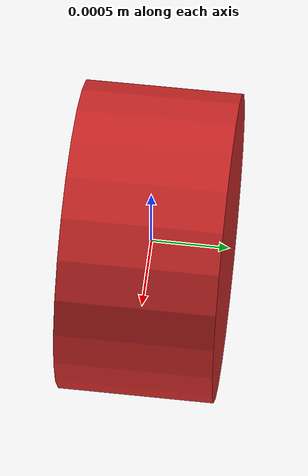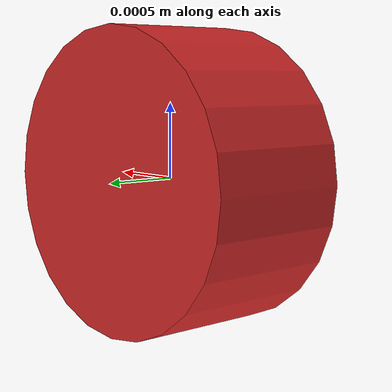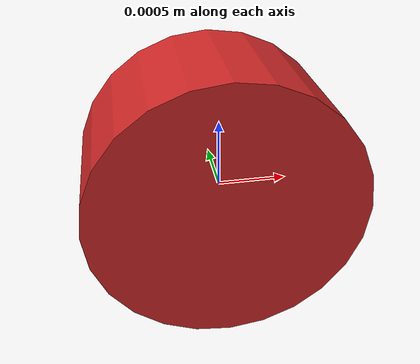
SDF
<?xml version='1.0' encoding='utf-8'?>
<sdf version="1.5">
  <model name="rod">
    <static>true</static>
    <pose>0 0 0 0 0 0</pose>

    <!--vertical support-->

    <link name="target_rod">
      <!--horizontal rod-->
      <gravity>false</gravity>
      <pose>0 0 0 1.570790 0 0</pose>
      <collision name="target_rod_collision">
        <geometry>
          <cylinder>
            <radius>0.025</radius>
            <length>0.2</length>
          </cylinder>
        </geometry>
      </collision>
      <visual name="target_rod_vis">
        <geometry>
          <cylinder>
            <radius>0.001</radius>
            <length>0.001</length>
          </cylinder>
        </geometry>
        <material>
          <script>
            <uri>file://media/materials/scripts/gazebo.material</uri>
            <name>Gazebo/Red</name>
          </script>
        </material>
      </visual>
      <velocity_decay />
    </link>

  </model>
</sdf>
